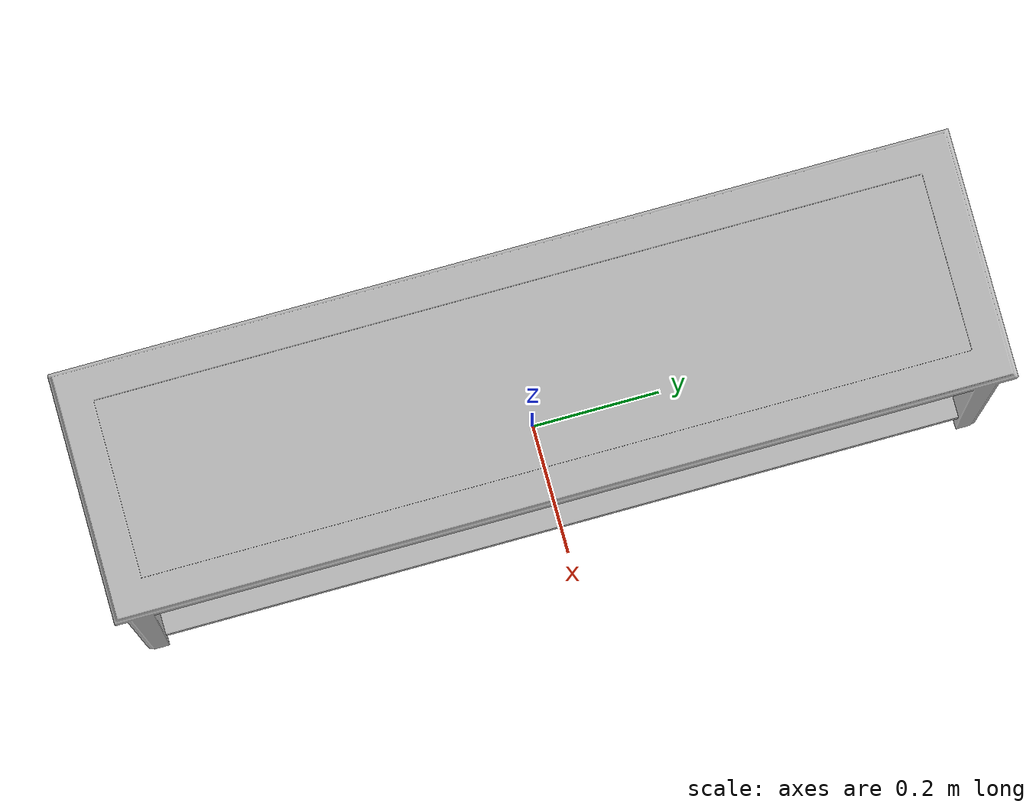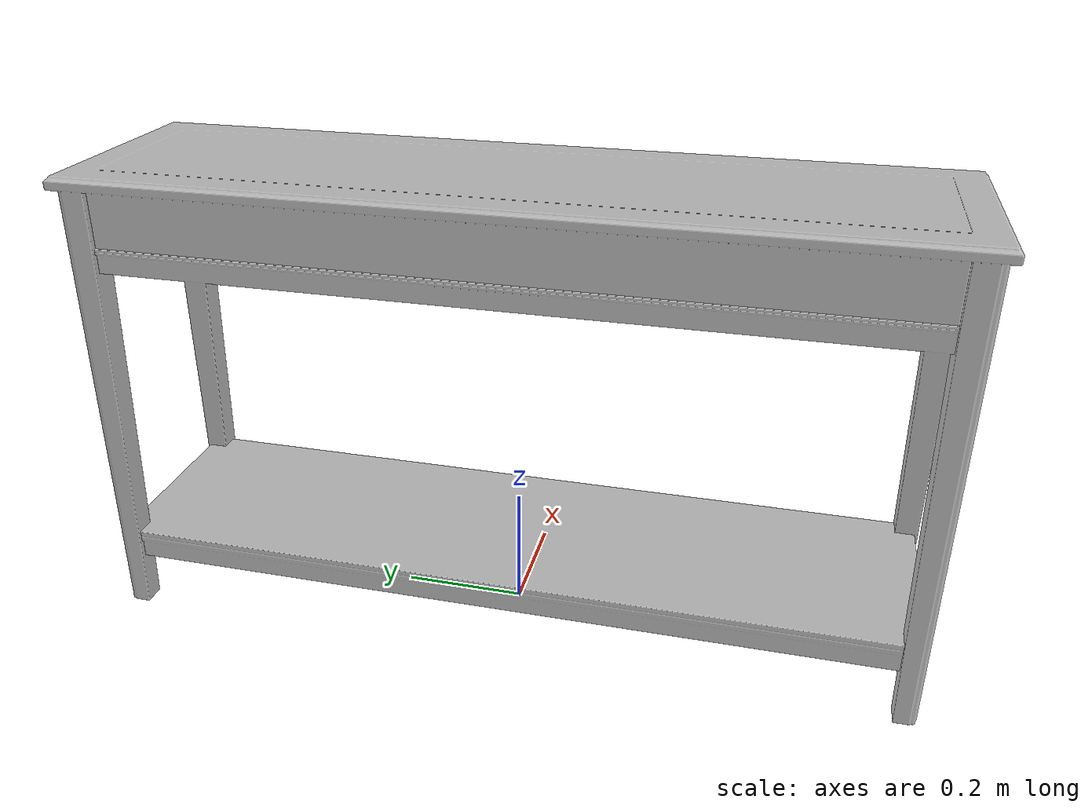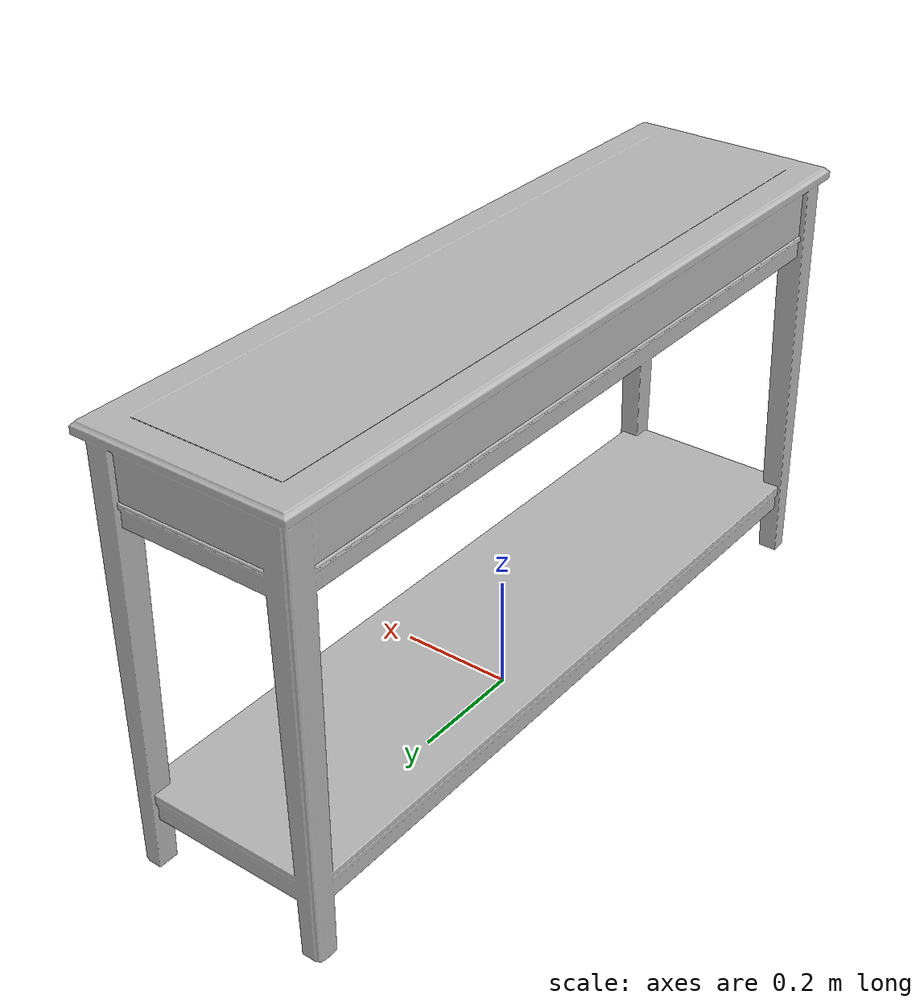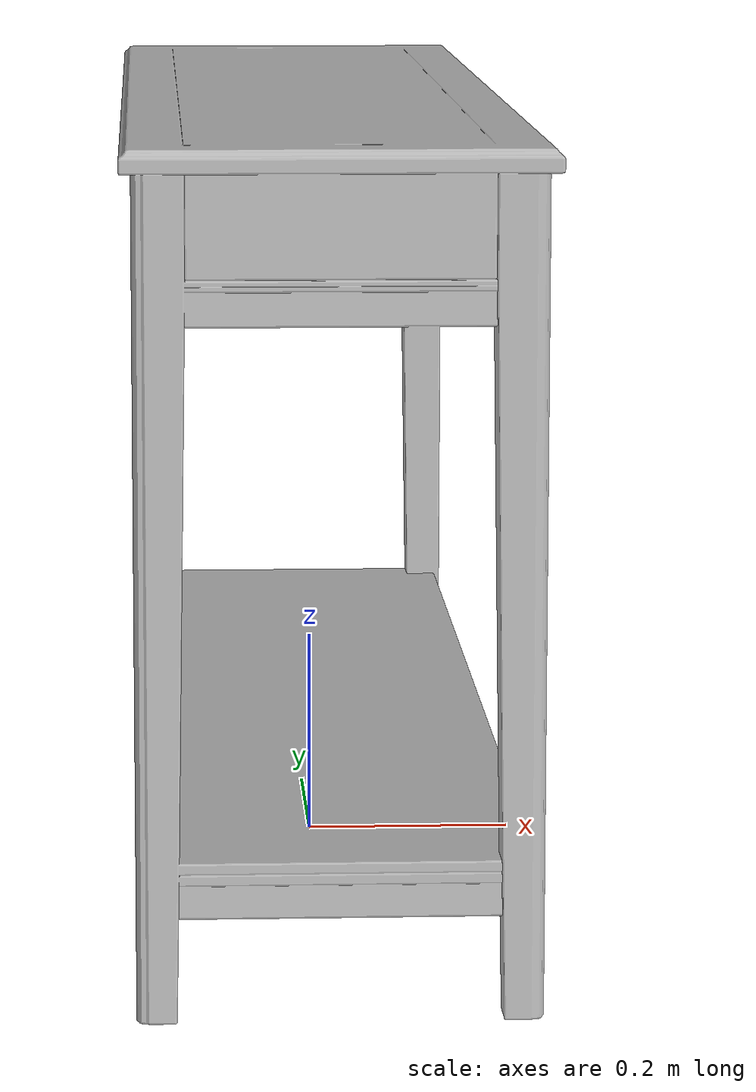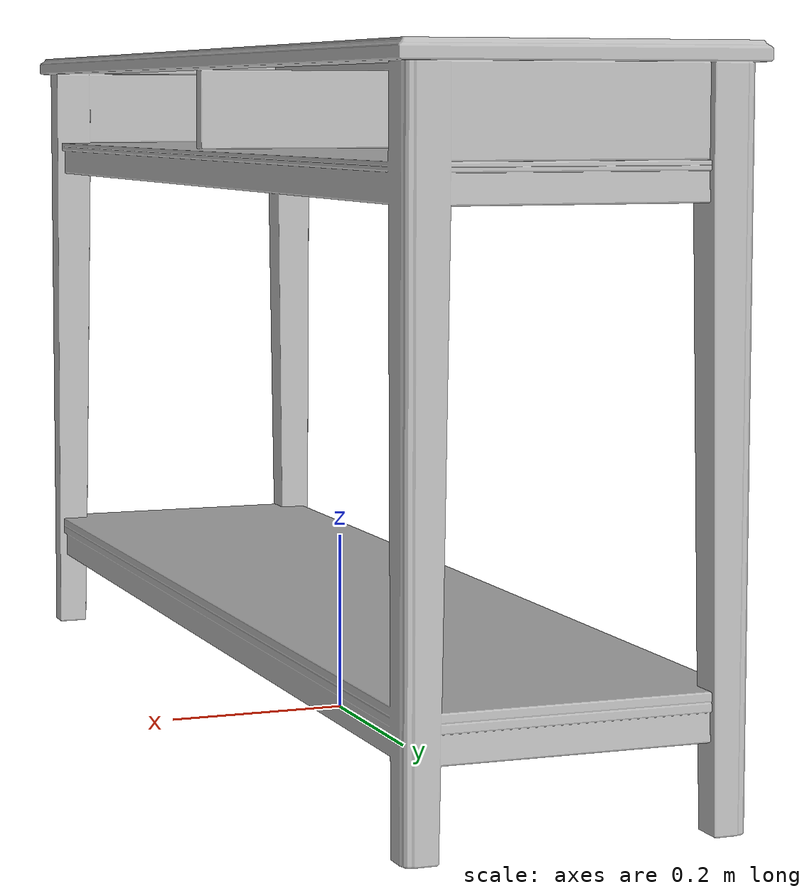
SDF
<?xml version='1.0'?>
<sdf version='1.4'>
  <model name='s__1004'>
    <pose>0 0 0 0 0 0</pose>
    <static>true</static>
    <link name='link'>
      <collision name='collision'>
        <pose>0 0 0 0 0 0</pose>
        <geometry>
          <box>
            <size>0.37 1.33 2</size>
          </box>
        </geometry>
      </collision>
      <visual name='visual'>
        <pose>0 0 0 0 0 0</pose>
        <geometry>
          <mesh><uri>model://s__1004/s__1004.dae</uri></mesh>
        </geometry>
      </visual>
    </link>
  </model>
</sdf>
